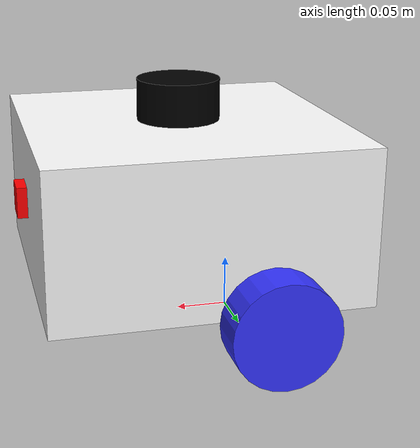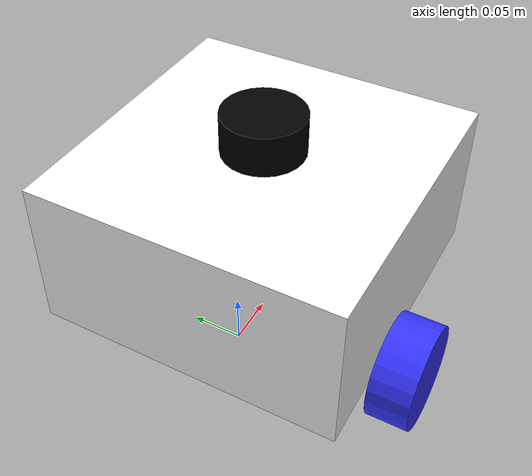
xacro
<?xml version="1.0"?>
<robot xmlns:xacro="http://www.ros.org/wiki/xacro"  name="robot">

    <xacro:include filename="common_properties.xacro" />
    <xacro:include filename="robot_core.xacro" />
    <xacro:include filename="robot_gazebo.xacro" />
    <xacro:include filename="lidar.xacro" />
    <xacro:include filename="depth_camera.xacro" />

</robot>

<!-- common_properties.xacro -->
<robot xmlns:xacro="http://www.ros.org/wiki/xacro" >

    <material name="white">
        <color rgba="1 1 1 1" />
    </material>

    <material name="orange">
        <color rgba="1 0.3 0.1 1" />
    </material>

    <material name="blue">
        <color rgba="0.2 0.2 1 1" />
    </material>

    <material name="black">
        <color rgba="0 0 0 1" />
    </material>

    <material name="red">
        <color rgba="1 0 0 1" />
    </material>

    <!-- Specify some standard inertial calculations https://en.wikipedia.org/wiki/List_of_moments_of_inertia -->
    <!-- These make use of xacro's mathematical functionality -->

    <xacro:macro name="inertial_sphere" params="mass radius *origin">
        <inertial>
            <xacro:insert_block name="origin"/>
            <mass value="${mass}" />
            <inertia ixx="${(2/5) * mass * (radius*radius)}" ixy="0.0" ixz="0.0"
                    iyy="${(2/5) * mass * (radius*radius)}" iyz="0.0"
                    izz="${(2/5) * mass * (radius*radius)}" />
        </inertial>
    </xacro:macro>

    <xacro:macro name="inertial_box" params="mass x y z *origin">
        <inertial>
            <xacro:insert_block name="origin"/>
            <mass value="${mass}" />
            <inertia ixx="${(1/12) * mass * (y*y+z*z)}" ixy="0.0" ixz="0.0"
                    iyy="${(1/12) * mass * (x*x+z*z)}" iyz="0.0"
                    izz="${(1/12) * mass * (x*x+y*y)}" />
        </inertial>
    </xacro:macro>

    <xacro:macro name="inertial_cylinder" params="mass length radius *origin">
        <inertial>
            <xacro:insert_block name="origin"/>
            <mass value="${mass}" />
            <inertia ixx="${(1/12) * mass * (3*radius*radius + length*length)}" ixy="0.0" ixz="0.0"
                    iyy="${(1/12) * mass * (3*radius*radius + length*length)}" iyz="0.0"
                    izz="${(1/2) * mass * (radius*radius)}" />
        </inertial>
    </xacro:macro>

</robot>

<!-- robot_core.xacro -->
<robot xmlns:xacro="http://www.ros.org/wiki/xacro">

    <link name="base_footprint" />

    <joint name="base_joint" type="fixed">
        <parent link="base_footprint" />
        <child link="base_link" />
        <origin xyz="0 0 0.05" />
    </joint>

    <link name="base_link" />

    <joint name="chassis_joint" type="fixed">
        <parent link="base_link" />
        <child link="chassis" />
        <origin xyz="-0.1 0 0" />
    </joint>

    <link name="chassis">
        <visual>
            <origin xyz="0.15 0 0.075" />
            <geometry>
                <box size="0.3 0.3 0.15" />
            </geometry>
            <material name="white" />
        </visual>
        <collision>
            <origin xyz="0.15 0 0.075" />
            <geometry>
                <box size="0.3 0.3 0.15" />
            </geometry>
        </collision>
        <xacro:inertial_box mass="0.5" x="0.3" y="0.3" z="0.15">
            <origin xyz="0.15 0 0.075" rpy="0 0 0"/>
        </xacro:inertial_box>
    </link>

    <joint name="left_wheel_joint" type="continuous">
        <parent link="base_link" />
        <child link="left_wheel" />
        <origin xyz="0 0.175 0" rpy="-1.57 0 0" />
        <axis xyz="0 0 1"/>
    </joint>

    <link name="left_wheel">
        <visual>
            <geometry>
                <cylinder radius="0.05" length="0.04" />
            </geometry>
            <material name="blue" />
        </visual>
        <collision>
            <geometry>
                <cylinder radius="0.05" length="0.04" />
            </geometry>
        </collision>
        <xacro:inertial_cylinder mass="0.1" length="0.04" radius="0.05">
            <origin xyz="0 0 0" rpy="0 0 0" />
        </xacro:inertial_cylinder>
    </link>

    <joint name="right_wheel_joint" type="continuous">
        <parent link="base_link" />
        <child link="right_wheel" />
        <origin xyz="0 -0.175 0" rpy="-1.57 0 0" />
        <axis xyz="0 0 1"/>
    </joint>

    <link name="right_wheel">
        <visual>
            <geometry>
                <cylinder radius="0.05" length="0.04" />
            </geometry>
            <material name="blue" />
        </visual>
        <collision>
            <geometry>
                <cylinder radius="0.05" length="0.04" />
            </geometry>
        </collision>
        <xacro:inertial_cylinder mass="0.1" length="0.04" radius="0.05">
            <origin xyz="0 0 0" rpy="0 0 0" />
        </xacro:inertial_cylinder>
    </link>

    <joint name="caster_wheel_joint" type="fixed">
        <parent link="chassis" />
        <child link="caster_wheel" />
        <origin xyz="0.24 0 0" />
    </joint>

    <link name="caster_wheel">
        <visual>
            <geometry>
                <sphere radius="0.05"/>
            </geometry>
            <material name="black" />
        </visual>
        <collision>
            <geometry>
                <sphere radius="0.05"/>
            </geometry>
        </collision>
        <xacro:inertial_sphere mass="0.1" radius="0.05">
            <origin xyz="0 0 0" rpy="0 0 0" />
        </xacro:inertial_sphere>
    </link>

</robot>

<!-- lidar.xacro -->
<robot xmlns:xacro="http://www.ros.org/wiki/xacro">

    <link name="lidar_link">
        <visual>
            <geometry>
                <cylinder radius=" 0.04" length="0.04" />
            </geometry>
            <material name="black" />
            <origin xyz="0 0 0" rpy="0 0 0" />
        </visual>
        <collision>
            <geometry>
                <cylinder radius=" 0.04" length="0.04" />
            </geometry>
            <origin xyz="0 0 0" rpy="0 0 0" />
        </collision>
        <xacro:inertial_cylinder mass="0.1" length="0.04" radius="0.04">
            <origin xyz="0 0 0" rpy="0 0 0" />
        </xacro:inertial_cylinder>
    </link>

    <joint name="base_lidar_joint" type="fixed">
        <parent link="base_link" />
        <child link="lidar_link" />
        <origin xyz="0.05 0 0.17" rpy="0 0 0" />
    </joint>

    <gazebo reference="lidar_link">
        <sensor name='laser' type='gpu_lidar'>
            <pose>0 0 0 0 0 0</pose>
            <visualize>false</visualize>
            <update_rate>10</update_rate>
            <lidar>
                <scan>
                    <horizontal>
                        <samples>360</samples>
                        <min_angle>-3.14</min_angle>
                        <max_angle>3.14</max_angle>
                    </horizontal>
                </scan>
                <range>
                    <min>0.3</min>
                    <max>12</max>
                </range>
            </lidar>
            <topic>lidar</topic>
              <gz_frame_id>lidar_link</gz_frame_id>
        </sensor>
    </gazebo>

</robot>

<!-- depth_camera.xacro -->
<robot xmlns:xacro="http://www.ros.org/wiki/xacro">

    <joint name="camera_joint" type="fixed">
        <parent link="chassis" />
        <child link="camera_link" />
        <origin xyz="0.305 0 0.08" rpy="0 0 0" />
    </joint>

    <link name="camera_link">
        <visual>
            <geometry>
                <box size="0.01 0.03 0.03" />
            </geometry>
            <material name="red" />
            <origin xyz="0 0 0" rpy="0 0 0" />
        </visual>
    </link>

    <joint name="camera_optical_joint" type="fixed">
        <parent link="camera_link" />
        <child link="camera_link_optical" />
        <origin xyz="0 0 0" rpy="${-pi/2} 0 ${-pi/2}" />
    </joint>

    <link name="camera_link_optical"></link>

    <gazebo reference="camera_link">
        <sensor name="depth_camera" type="depth_camera">
            <update_rate>10</update_rate>
            <topic>depth_camera</topic>
            <camera>
                <horizontal_fov>1.05</horizontal_fov>
                <image>
                    <width>256</width>
                    <height>256</height>
                    <format>B8G8R8</format>
                </image>
                <clip>
                    <near>0.1</near>
                    <far>10.0</far>
                </clip>
            </camera>
            <gz_frame_id>camera_link</gz_frame_id>
        </sensor>
    </gazebo>

</robot>
